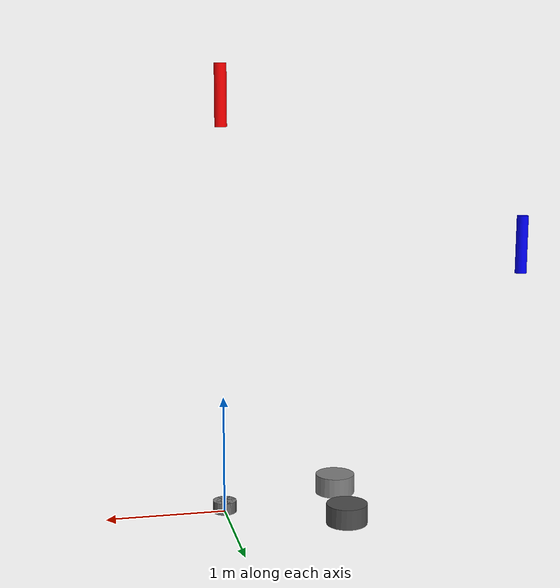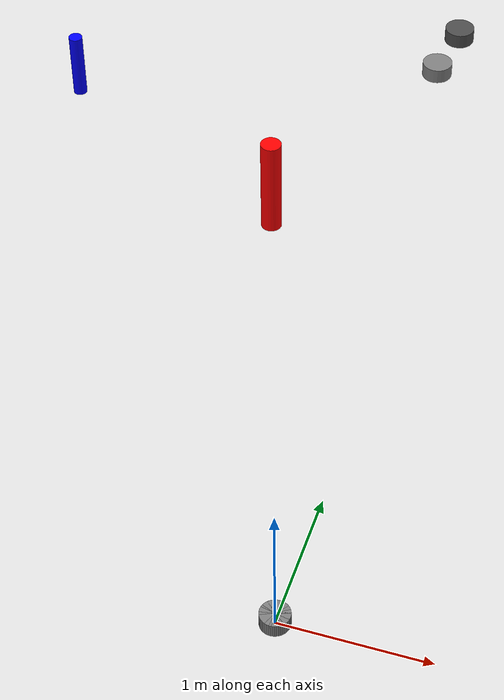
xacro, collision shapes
<?xml version="1.0"?>
<robot name="two_link_arm" xmlns:xacro="http://www.ros.org/wiki/xacro">
  <xacro:include filename="end_effector.xacro"/>
  <!-- Base Link -->
  <link name="base_link">
    <visual>
      <origin xyz="0 0 0" rpy="0 0 0"/>
      <geometry>
        <sphere radius="0.03"/>
      </geometry>
      <material name="gray">
        <color rgba="0.5 0.5 0.5 1"/>
      </material>
    </visual>
    <collision>
      <origin xyz="0 0 0.05" rpy="0 0 0"/>
      <geometry>
        <cylinder radius="0.1" length="0.1"/>
      </geometry>
    </collision>
    <inertial>
      <mass value="1.0"/>
      <origin xyz="0 0 0.05" rpy="0 0 0"/>
      <inertia ixx="0.0083" iyy="0.0083" izz="0.005" ixy="0" ixz="0" iyz="0"/>
    </inertial>
  </link>

  <!-- Link 0 -->
  <link name="link0">
    <visual>
      <origin xyz="0 0 0" rpy="0 0 0"/>
      <geometry>
        <mesh filename="package://two_link_arm_sim/meshes/base.stl" scale=".001 .001 .001"/>
      </geometry>
      <material name="gray">
        <color rgba="0.5 0.5 0.5 1"/>
      </material>
    </visual>
    <collision>
      <origin xyz="0 0 0.05" rpy="0 0 0"/>
      <geometry>
        <cylinder radius="0.1" length="0.1"/>
      </geometry>
    </collision>
    <inertial>
      <mass value="1.0"/>
      <origin xyz="0 0 0.05" rpy="0 0 0"/>
      <inertia ixx="0.0083" iyy="0.0083" izz="0.005" ixy="0" ixz="0" iyz="0"/>
    </inertial>
  </link>

  <!-- Link 1 -->
  <link name="link1">
    <visual>
      <origin xyz="0 0 0 " rpy="0 0 0"/>
      <geometry>
        <mesh filename="package://two_link_arm_sim/meshes/primary_arm.stl" scale=".0005 .0005 .0005"/>
      </geometry>
      <material name="red">
        <color rgba="1 0 0 1"/>
      </material>
    </visual>
    <collision>
      <origin xyz="0.005 0.19 1.695" rpy="0 0 3.12"/>
      <geometry>
        <cylinder radius="0.05" length="0.5"/>
      </geometry>
    </collision>
    <inertial>
      <mass value="0.5"/>
      <origin xyz="0.005 0.19 1.695" rpy="0 0 3.12"/>
      <inertia ixx="0.0104" iyy="0.0104" izz="0.000625" ixy="0" ixz="0" iyz="0"/>
    </inertial>
  </link>

  <!-- Link 2 -->
  <link name="link2">
    <visual>
      <origin xyz="0 0 0" rpy="0 0 0"/>
      <geometry>
        <mesh filename="package://two_link_arm_sim/meshes/forearm.stl" scale=".0005 .0005 .0005"/>
      </geometry>
      <material name="blue">
        <color rgba="0 0 1 1"/>
      </material>
    </visual>
    <collision>
      <origin xyz="-0.015 -1.8 0.95" rpy="0 0 0"/>
      <geometry>
        <cylinder radius="0.04" length="0.4"/>
      </geometry>
    </collision>
    <inertial>
      <mass value="0.3"/>
      <origin xyz="-0.015 -1.8 0.95" rpy="0 0 1.57"/>
      <inertia ixx="0.004" iyy="0.004" izz="0.00024" ixy="0" ixz="0" iyz="0"/>
    </inertial>
  </link>

  <!-- Joint 0: Base to Link0 -->
  <joint name="joint0" type="revolute">
    <parent link="base_link"/>
    <child link="link0"/>
    <origin xyz="0 0 0" rpy="0 0 3.14"/>
    <axis xyz="0 0 1"/>
    <limit lower="-1.57" upper="1.57" effort="100" velocity="1.0"/>
  </joint>

  <!-- Joint 1: link0 to Link1 -->
  <joint name="joint1" type="revolute">
    <parent link="link0"/>
    <child link="link1"/>
    <origin xyz="0.005 0.19 1.8" rpy="0 0 3.14"/>
    <axis xyz="1 0 0"/>
    <limit lower="-0.6" upper="1.5" effort="100" velocity="1.0"/>
  </joint>

  <!-- Joint 2: Link1 to Link2 -->
  <joint name="joint2" type="revolute">
    <parent link="link1"/>
    <child link="link2"/>
    <origin xyz="-0.015 1.99 -.26" rpy="0 0 -1.57"/>
    <axis xyz="0 1 0"/>
    <limit lower="-2.0" upper="2.0" effort="50" velocity="1.0"/>
  </joint>

  <!-- Gazebo plugin for joint control -->
  <gazebo>
    <plugin name="gazebo_ros2_control" filename="libgazebo_ros2_control.so">
      <parameters>$(find two_link_arm_sim)/config/arm_controllers.yaml</parameters>
    </plugin>
  </gazebo>

  <!-- ros2_control hardware interface -->
  <ros2_control name="TwoLinkArmSystem" type="system">
    <hardware>
      <plugin>gazebo_ros2_control/GazeboSystem</plugin>
    </hardware>
    <joint name="joint1">
      <command_interface name="position">
        <param name="min">-3.14159</param>
        <param name="max">3.14159</param>
      </command_interface>
      <state_interface name="position"/>
      <state_interface name="velocity"/>
    </joint>
    <joint name="joint2">
      <command_interface name="position">
        <param name="min">-1.57</param>
        <param name="max">1.57</param>
      </command_interface>
      <state_interface name="position"/>
      <state_interface name="velocity"/>
    </joint>
  </ros2_control>

  <xacro:end_effector_joint parent="link2"/>

</robot>

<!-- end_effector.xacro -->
<robot xmlns:xacro="http://www.ros.org/wiki/xacro">

        <!-- Parameterized claw macro -->
        <xacro:macro name="end_effector_joint" params="parent">

    <!-- Base link that connects to the arm -->
    <joint name="claw_base_joint" type="fixed">
      <parent link="${parent}"/>
      <child link="claw_base_link"/>
      <origin xyz="-1.87 0 0" rpy="0 0 -1.57"/>
    </joint>

    <link name="claw_base_link">
      <visual>
        <geometry>
          <mesh filename="package://two_link_arm_sim/meshes/claw_big.stl" scale=".0005 .0005 .0005"/>
        </geometry>
        <material name="gray">
          <color rgba="0.5 0.5 0.5 1.0"/>
        </material>
      </visual>
      <collision>
        <geometry>
          <cylinder radius="0.1" length="0.1"/>
        </geometry>
      </collision>
      <inertial>
        <mass value="0.05"/>
        <inertia ixx="0.0001" ixy="0" ixz="0" iyy="0.0001" iyz="0" izz="0.0001"/>
      </inertial>
    </link>

    <!-- Movable claw finger (revolute joint for pinching) -->
    <joint name="gripper_joint" type="revolute">
      <parent link="claw_base_link"/>
      <child link="movable_finger_link"/>
      <origin xyz="-.05 -0.43 0" rpy="3.14 0 -1.57"/>  <!-- Position opposite side -->
      <axis xyz="0 0 1"/>  <!-- Rotation axis (adjust as needed) -->
      <limit effort="10.0" lower="-0.5" upper="0.5" velocity="1.0"/>  <!-- Pinch range -->
    </joint>

    <link name="movable_finger_link">
      <visual>
        <geometry>
          <mesh filename="package://two_link_arm_sim/meshes/claw_small.stl" scale=".0005 .0005 .0005"/>
        </geometry>
        <material name="dark_gray">
          <color rgba="0.3 0.3 0.3 1.0"/>
        </material>
      </visual>
      <collision>
        <geometry>
           <cylinder radius="0.1" length="0.1"/>
        </geometry>
      </collision>
      <inertial>
        <mass value="0.02"/>
        <inertia ixx="0.00001" ixy="0" ixz="0" iyy="0.00001" iyz="0" izz="0.00001"/>
      </inertial>
    </link>

  </xacro:macro>

   </robot>
